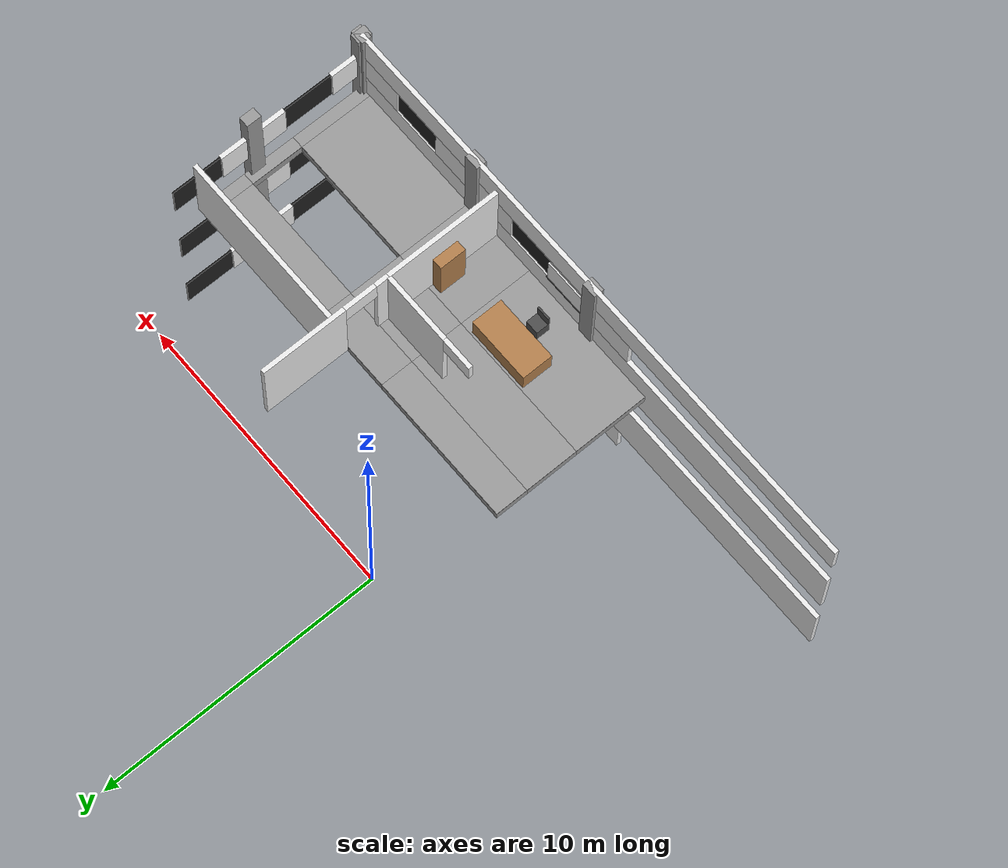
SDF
<sdf version="1.7">
 <world name="default">
  <model name="building_shell">
   <static>1</static>
   <link name="wSsb0_1">
    <pose>6.65 -8 0.5 0 0 0</pose>
    <collision name="c"><geometry><box><size>6.7 0.15 1</size></box></geometry></collision>
    <visual name="v">
     <geometry><box><size>6.7 0.15 1</size></box></geometry>
     <material>
      <script><uri>file://media/materials/scripts/Gazebo.material</uri><name>Gazebo/White</name></script>
     </material>
    </visual>
   </link>
   <link name="wSsb1_0">
    <pose>0 -8 3.25 0 0 0</pose>
    <collision name="c"><geometry><box><size>20 0.15 2.1</size></box></geometry></collision>
    <visual name="v">
     <geometry><box><size>20 0.15 2.1</size></box></geometry>
     <material>
      <script><uri>file://media/materials/scripts/Gazebo.material</uri><name>Gazebo/White</name></script>
     </material>
    </visual>
   </link>
   <link name="wSsb2_0">
    <pose>0 -8 6.55 0 0 0</pose>
    <collision name="c"><geometry><box><size>20 0.15 2.1</size></box></geometry></collision>
    <visual name="v">
     <geometry><box><size>20 0.15 2.1</size></box></geometry>
     <material>
      <script><uri>file://media/materials/scripts/Gazebo.material</uri><name>Gazebo/White</name></script>
     </material>
    </visual>
   </link>
   <link name="wSsb3_0">
    <pose>0 -8 9.35 0 0 0</pose>
    <collision name="c"><geometry><box><size>20 0.15 1.1</size></box></geometry></collision>
    <visual name="v">
     <geometry><box><size>20 0.15 1.1</size></box></geometry>
     <material>
      <script><uri>file://media/materials/scripts/Gazebo.material</uri><name>Gazebo/White</name></script>
     </material>
    </visual>
   </link>
   <link name="wSm0_2">
    <pose>0 -8 1.6 0 0 0</pose>
    <collision name="c"><geometry><box><size>3.3 0.15 1.2</size></box></geometry></collision>
    <visual name="v">
     <geometry><box><size>3.3 0.15 1.2</size></box></geometry>
     <material>
      <script><uri>file://media/materials/scripts/Gazebo.material</uri><name>Gazebo/White</name></script>
     </material>
    </visual>
   </link>
   <link name="wSm0_3">
    <pose>5 -8 1.6 0 0 0</pose>
    <collision name="c"><geometry><box><size>3.3 0.15 1.2</size></box></geometry></collision>
    <visual name="v">
     <geometry><box><size>3.3 0.15 1.2</size></box></geometry>
     <material>
      <script><uri>file://media/materials/scripts/Gazebo.material</uri><name>Gazebo/White</name></script>
     </material>
    </visual>
   </link>
   <link name="wSm0_4">
    <pose>9.175 -8 1.6 0 0 0</pose>
    <collision name="c"><geometry><box><size>1.65 0.15 1.2</size></box></geometry></collision>
    <visual name="v">
     <geometry><box><size>1.65 0.15 1.2</size></box></geometry>
     <material>
      <script><uri>file://media/materials/scripts/Gazebo.material</uri><name>Gazebo/White</name></script>
     </material>
    </visual>
   </link>
   <link name="wSg0_3">
    <pose>7.5 -8 1.6 0 0 0</pose>
    <collision name="c"><geometry><box><size>1.7 0.05 1.2</size></box></geometry></collision>
    <visual name="v">
     <geometry><box><size>1.7 0.05 1.2</size></box></geometry>
     <material>
      <script><uri>file://media/materials/scripts/Gazebo.material</uri><name>Gazebo/FlatBlack</name></script>
     </material>
    </visual>
   </link>
   <link name="wSm1_2">
    <pose>0 -8 4.9 0 0 0</pose>
    <collision name="c"><geometry><box><size>3.3 0.15 1.2</size></box></geometry></collision>
    <visual name="v">
     <geometry><box><size>3.3 0.15 1.2</size></box></geometry>
     <material>
      <script><uri>file://media/materials/scripts/Gazebo.material</uri><name>Gazebo/White</name></script>
     </material>
    </visual>
   </link>
   <link name="wSm1_3">
    <pose>5 -8 4.9 0 0 0</pose>
    <collision name="c"><geometry><box><size>3.3 0.15 1.2</size></box></geometry></collision>
    <visual name="v">
     <geometry><box><size>3.3 0.15 1.2</size></box></geometry>
     <material>
      <script><uri>file://media/materials/scripts/Gazebo.material</uri><name>Gazebo/White</name></script>
     </material>
    </visual>
   </link>
   <link name="wSm1_4">
    <pose>9.175 -8 4.9 0 0 0</pose>
    <collision name="c"><geometry><box><size>1.65 0.15 1.2</size></box></geometry></collision>
    <visual name="v">
     <geometry><box><size>1.65 0.15 1.2</size></box></geometry>
     <material>
      <script><uri>file://media/materials/scripts/Gazebo.material</uri><name>Gazebo/White</name></script>
     </material>
    </visual>
   </link>
   <link name="wSg1_2">
    <pose>2.5 -8 4.9 0 0 0</pose>
    <collision name="c"><geometry><box><size>1.7 0.05 1.2</size></box></geometry></collision>
    <visual name="v">
     <geometry><box><size>1.7 0.05 1.2</size></box></geometry>
     <material>
      <script><uri>file://media/materials/scripts/Gazebo.material</uri><name>Gazebo/FlatBlack</name></script>
     </material>
    </visual>
   </link>
   <link name="wSg1_3">
    <pose>7.5 -8 4.9 0 0 0</pose>
    <collision name="c"><geometry><box><size>1.7 0.05 1.2</size></box></geometry></collision>
    <visual name="v">
     <geometry><box><size>1.7 0.05 1.2</size></box></geometry>
     <material>
      <script><uri>file://media/materials/scripts/Gazebo.material</uri><name>Gazebo/FlatBlack</name></script>
     </material>
    </visual>
   </link>
   <link name="wSm2_2">
    <pose>0 -8 8.2 0 0 0</pose>
    <collision name="c"><geometry><box><size>3.3 0.15 1.2</size></box></geometry></collision>
    <visual name="v">
     <geometry><box><size>3.3 0.15 1.2</size></box></geometry>
     <material>
      <script><uri>file://media/materials/scripts/Gazebo.material</uri><name>Gazebo/White</name></script>
     </material>
    </visual>
   </link>
   <link name="wSm2_3">
    <pose>5 -8 8.2 0 0 0</pose>
    <collision name="c"><geometry><box><size>3.3 0.15 1.2</size></box></geometry></collision>
    <visual name="v">
     <geometry><box><size>3.3 0.15 1.2</size></box></geometry>
     <material>
      <script><uri>file://media/materials/scripts/Gazebo.material</uri><name>Gazebo/White</name></script>
     </material>
    </visual>
   </link>
   <link name="wSm2_4">
    <pose>9.175 -8 8.2 0 0 0</pose>
    <collision name="c"><geometry><box><size>1.65 0.15 1.2</size></box></geometry></collision>
    <visual name="v">
     <geometry><box><size>1.65 0.15 1.2</size></box></geometry>
     <material>
      <script><uri>file://media/materials/scripts/Gazebo.material</uri><name>Gazebo/White</name></script>
     </material>
    </visual>
   </link>
   <link name="wSg2_2">
    <pose>2.5 -8 8.2 0 0 0</pose>
    <collision name="c"><geometry><box><size>1.7 0.05 1.2</size></box></geometry></collision>
    <visual name="v">
     <geometry><box><size>1.7 0.05 1.2</size></box></geometry>
     <material>
      <script><uri>file://media/materials/scripts/Gazebo.material</uri><name>Gazebo/FlatBlack</name></script>
     </material>
    </visual>
   </link>
   <link name="wSg2_3">
    <pose>7.5 -8 8.2 0 0 0</pose>
    <collision name="c"><geometry><box><size>1.7 0.05 1.2</size></box></geometry></collision>
    <visual name="v">
     <geometry><box><size>1.7 0.05 1.2</size></box></geometry>
     <material>
      <script><uri>file://media/materials/scripts/Gazebo.material</uri><name>Gazebo/FlatBlack</name></script>
     </material>
    </visual>
   </link>
   <link name="wSpil0">
    <pose>0 -8 4.95 0 0 0</pose>
    <collision name="c"><geometry><box><size>0.5 0.35 9.9</size></box></geometry></collision>
    <visual name="v">
     <geometry><box><size>0.5 0.35 9.9</size></box></geometry>
     <material>
      <script><uri>file://media/materials/scripts/Gazebo.material</uri><name>Gazebo/Grey</name></script>
     </material>
    </visual>
   </link>
   <link name="wSpil5">
    <pose>5 -8 4.95 0 0 0</pose>
    <collision name="c"><geometry><box><size>0.5 0.35 9.9</size></box></geometry></collision>
    <visual name="v">
     <geometry><box><size>0.5 0.35 9.9</size></box></geometry>
     <material>
      <script><uri>file://media/materials/scripts/Gazebo.material</uri><name>Gazebo/Grey</name></script>
     </material>
    </visual>
   </link>
   <link name="wSpil10">
    <pose>10 -8 4.95 0 0 0</pose>
    <collision name="c"><geometry><box><size>0.5 0.35 9.9</size></box></geometry></collision>
    <visual name="v">
     <geometry><box><size>0.5 0.35 9.9</size></box></geometry>
     <material>
      <script><uri>file://media/materials/scripts/Gazebo.material</uri><name>Gazebo/Grey</name></script>
     </material>
    </visual>
   </link>
   <link name="wEm0_0">
    <pose>10 -7.425 1.6 0 0 0</pose>
    <collision name="c"><geometry><box><size>0.15 1.15 1.2</size></box></geometry></collision>
    <visual name="v">
     <geometry><box><size>0.15 1.15 1.2</size></box></geometry>
     <material>
      <script><uri>file://media/materials/scripts/Gazebo.material</uri><name>Gazebo/White</name></script>
     </material>
    </visual>
   </link>
   <link name="wEm0_1">
    <pose>10 -4 1.6 0 0 0</pose>
    <collision name="c"><geometry><box><size>0.15 2.3 1.2</size></box></geometry></collision>
    <visual name="v">
     <geometry><box><size>0.15 2.3 1.2</size></box></geometry>
     <material>
      <script><uri>file://media/materials/scripts/Gazebo.material</uri><name>Gazebo/White</name></script>
     </material>
    </visual>
   </link>
   <link name="wEg0_0">
    <pose>10 -6 1.6 0 0 0</pose>
    <collision name="c"><geometry><box><size>0.05 1.7 1.2</size></box></geometry></collision>
    <visual name="v">
     <geometry><box><size>0.05 1.7 1.2</size></box></geometry>
     <material>
      <script><uri>file://media/materials/scripts/Gazebo.material</uri><name>Gazebo/FlatBlack</name></script>
     </material>
    </visual>
   </link>
   <link name="wEg0_1">
    <pose>10 -2 1.6 0 0 0</pose>
    <collision name="c"><geometry><box><size>0.05 1.7 1.2</size></box></geometry></collision>
    <visual name="v">
     <geometry><box><size>0.05 1.7 1.2</size></box></geometry>
     <material>
      <script><uri>file://media/materials/scripts/Gazebo.material</uri><name>Gazebo/FlatBlack</name></script>
     </material>
    </visual>
   </link>
   <link name="wEm1_0">
    <pose>10 -7.425 4.9 0 0 0</pose>
    <collision name="c"><geometry><box><size>0.15 1.15 1.2</size></box></geometry></collision>
    <visual name="v">
     <geometry><box><size>0.15 1.15 1.2</size></box></geometry>
     <material>
      <script><uri>file://media/materials/scripts/Gazebo.material</uri><name>Gazebo/White</name></script>
     </material>
    </visual>
   </link>
   <link name="wEm1_1">
    <pose>10 -4 4.9 0 0 0</pose>
    <collision name="c"><geometry><box><size>0.15 2.3 1.2</size></box></geometry></collision>
    <visual name="v">
     <geometry><box><size>0.15 2.3 1.2</size></box></geometry>
     <material>
      <script><uri>file://media/materials/scripts/Gazebo.material</uri><name>Gazebo/White</name></script>
     </material>
    </visual>
   </link>
   <link name="wEg1_0">
    <pose>10 -6 4.9 0 0 0</pose>
    <collision name="c"><geometry><box><size>0.05 1.7 1.2</size></box></geometry></collision>
    <visual name="v">
     <geometry><box><size>0.05 1.7 1.2</size></box></geometry>
     <material>
      <script><uri>file://media/materials/scripts/Gazebo.material</uri><name>Gazebo/FlatBlack</name></script>
     </material>
    </visual>
   </link>
   <link name="wEg1_1">
    <pose>10 -2 4.9 0 0 0</pose>
    <collision name="c"><geometry><box><size>0.05 1.7 1.2</size></box></geometry></collision>
    <visual name="v">
     <geometry><box><size>0.05 1.7 1.2</size></box></geometry>
     <material>
      <script><uri>file://media/materials/scripts/Gazebo.material</uri><name>Gazebo/FlatBlack</name></script>
     </material>
    </visual>
   </link>
   <link name="wEm2_0">
    <pose>10 -7.425 8.2 0 0 0</pose>
    <collision name="c"><geometry><box><size>0.15 1.15 1.2</size></box></geometry></collision>
    <visual name="v">
     <geometry><box><size>0.15 1.15 1.2</size></box></geometry>
     <material>
      <script><uri>file://media/materials/scripts/Gazebo.material</uri><name>Gazebo/White</name></script>
     </material>
    </visual>
   </link>
   <link name="wEm2_1">
    <pose>10 -4 8.2 0 0 0</pose>
    <collision name="c"><geometry><box><size>0.15 2.3 1.2</size></box></geometry></collision>
    <visual name="v">
     <geometry><box><size>0.15 2.3 1.2</size></box></geometry>
     <material>
      <script><uri>file://media/materials/scripts/Gazebo.material</uri><name>Gazebo/White</name></script>
     </material>
    </visual>
   </link>
   <link name="wEg2_0">
    <pose>10 -6 8.2 0 0 0</pose>
    <collision name="c"><geometry><box><size>0.05 1.7 1.2</size></box></geometry></collision>
    <visual name="v">
     <geometry><box><size>0.05 1.7 1.2</size></box></geometry>
     <material>
      <script><uri>file://media/materials/scripts/Gazebo.material</uri><name>Gazebo/FlatBlack</name></script>
     </material>
    </visual>
   </link>
   <link name="wEg2_1">
    <pose>10 -2 8.2 0 0 0</pose>
    <collision name="c"><geometry><box><size>0.05 1.7 1.2</size></box></geometry></collision>
    <visual name="v">
     <geometry><box><size>0.05 1.7 1.2</size></box></geometry>
     <material>
      <script><uri>file://media/materials/scripts/Gazebo.material</uri><name>Gazebo/FlatBlack</name></script>
     </material>
    </visual>
   </link>
   <link name="wEpil-8">
    <pose>10 -8 4.95 0 0 0</pose>
    <collision name="c"><geometry><box><size>0.35 0.5 9.9</size></box></geometry></collision>
    <visual name="v">
     <geometry><box><size>0.35 0.5 9.9</size></box></geometry>
     <material>
      <script><uri>file://media/materials/scripts/Gazebo.material</uri><name>Gazebo/Grey</name></script>
     </material>
    </visual>
   </link>
   <link name="wEpil-4">
    <pose>10 -4 4.95 0 0 0</pose>
    <collision name="c"><geometry><box><size>0.35 0.5 9.9</size></box></geometry></collision>
    <visual name="v">
     <geometry><box><size>0.35 0.5 9.9</size></box></geometry>
     <material>
      <script><uri>file://media/materials/scripts/Gazebo.material</uri><name>Gazebo/Grey</name></script>
     </material>
    </visual>
   </link>
   <link name="canopy">
    <pose>2.5 -8.9 2.6 0 0 0</pose>
    <collision name="c"><geometry><box><size>3 1.8 0.15</size></box></geometry></collision>
    <visual name="v">
     <geometry><box><size>3 1.8 0.15</size></box></geometry>
     <material>
      <script><uri>file://media/materials/scripts/Gazebo.material</uri><name>Gazebo/DarkGrey</name></script>
     </material>
    </visual>
   </link>
   <link name="canopyL">
    <pose>1.1 -9.7 1.3 0 0 0</pose>
    <collision name="c"><geometry><box><size>0.15 0.15 2.6</size></box></geometry></collision>
    <visual name="v">
     <geometry><box><size>0.15 0.15 2.6</size></box></geometry>
     <material>
      <script><uri>file://media/materials/scripts/Gazebo.material</uri><name>Gazebo/DarkGrey</name></script>
     </material>
    </visual>
   </link>
   <link name="canopyR">
    <pose>3.9 -9.7 1.3 0 0 0</pose>
    <collision name="c"><geometry><box><size>0.15 0.15 2.6</size></box></geometry></collision>
    <visual name="v">
     <geometry><box><size>0.15 0.15 2.6</size></box></geometry>
     <material>
      <script><uri>file://media/materials/scripts/Gazebo.material</uri><name>Gazebo/DarkGrey</name></script>
     </material>
    </visual>
   </link>
  </model>
  <model name="building_L3">
   <static>1</static>
   <link name="floor2_5">
    <pose>0 -6.7 6.45 0 0 0</pose>
    <collision name="c"><geometry><box><size>5 2.6 0.3</size></box></geometry></collision>
    <visual name="v">
     <geometry><box><size>5 2.6 0.3</size></box></geometry>
     <material>
      <script><uri>file://media/materials/scripts/Gazebo.material</uri><name>Gazebo/Grey</name></script>
     </material>
    </visual>
   </link>
   <link name="floor2c_5">
    <pose>0 -6.7 6.61 0 0 0</pose>
    <collision name="c"><geometry><box><size>5 2.6 0.02</size></box></geometry></collision>
    <visual name="v">
     <geometry><box><size>5 2.6 0.02</size></box></geometry>
     <material>
      <script><uri>file://media/materials/scripts/Gazebo.material</uri><name>Gazebo/Grey</name></script>
     </material>
    </visual>
   </link>
   <link name="floor2_6">
    <pose>0 -4.5 6.45 0 0 0</pose>
    <collision name="c"><geometry><box><size>5 1.8 0.3</size></box></geometry></collision>
    <visual name="v">
     <geometry><box><size>5 1.8 0.3</size></box></geometry>
     <material>
      <script><uri>file://media/materials/scripts/Gazebo.material</uri><name>Gazebo/Grey</name></script>
     </material>
    </visual>
   </link>
   <link name="floor2c_6">
    <pose>0 -4.5 6.61 0 0 0</pose>
    <collision name="c"><geometry><box><size>5 1.8 0.02</size></box></geometry></collision>
    <visual name="v">
     <geometry><box><size>5 1.8 0.02</size></box></geometry>
     <material>
      <script><uri>file://media/materials/scripts/Gazebo.material</uri><name>Gazebo/Grey</name></script>
     </material>
    </visual>
   </link>
   <link name="floor2_7">
    <pose>0 -3.05 6.45 0 0 0</pose>
    <collision name="c"><geometry><box><size>5 1.1 0.3</size></box></geometry></collision>
    <visual name="v">
     <geometry><box><size>5 1.1 0.3</size></box></geometry>
     <material>
      <script><uri>file://media/materials/scripts/Gazebo.material</uri><name>Gazebo/Grey</name></script>
     </material>
    </visual>
   </link>
   <link name="floor2c_7">
    <pose>0 -3.05 6.61 0 0 0</pose>
    <collision name="c"><geometry><box><size>5 1.1 0.02</size></box></geometry></collision>
    <visual name="v">
     <geometry><box><size>5 1.1 0.02</size></box></geometry>
     <material>
      <script><uri>file://media/materials/scripts/Gazebo.material</uri><name>Gazebo/Grey</name></script>
     </material>
    </visual>
   </link>
   <link name="floor2_9">
    <pose>3.85 -6.7 6.45 0 0 0</pose>
    <collision name="c"><geometry><box><size>2.7 2.6 0.3</size></box></geometry></collision>
    <visual name="v">
     <geometry><box><size>2.7 2.6 0.3</size></box></geometry>
     <material>
      <script><uri>file://media/materials/scripts/Gazebo.material</uri><name>Gazebo/Grey</name></script>
     </material>
    </visual>
   </link>
   <link name="floor2c_9">
    <pose>3.85 -6.7 6.61 0 0 0</pose>
    <collision name="c"><geometry><box><size>2.7 2.6 0.02</size></box></geometry></collision>
    <visual name="v">
     <geometry><box><size>2.7 2.6 0.02</size></box></geometry>
     <material>
      <script><uri>file://media/materials/scripts/Gazebo.material</uri><name>Gazebo/Grey</name></script>
     </material>
    </visual>
   </link>
   <link name="floor2_10">
    <pose>3.85 -4.5 6.45 0 0 0</pose>
    <collision name="c"><geometry><box><size>2.7 1.8 0.3</size></box></geometry></collision>
    <visual name="v">
     <geometry><box><size>2.7 1.8 0.3</size></box></geometry>
     <material>
      <script><uri>file://media/materials/scripts/Gazebo.material</uri><name>Gazebo/Grey</name></script>
     </material>
    </visual>
   </link>
   <link name="floor2c_10">
    <pose>3.85 -4.5 6.61 0 0 0</pose>
    <collision name="c"><geometry><box><size>2.7 1.8 0.02</size></box></geometry></collision>
    <visual name="v">
     <geometry><box><size>2.7 1.8 0.02</size></box></geometry>
     <material>
      <script><uri>file://media/materials/scripts/Gazebo.material</uri><name>Gazebo/Grey</name></script>
     </material>
    </visual>
   </link>
   <link name="floor2_11">
    <pose>3.85 -3.05 6.45 0 0 0</pose>
    <collision name="c"><geometry><box><size>2.7 1.1 0.3</size></box></geometry></collision>
    <visual name="v">
     <geometry><box><size>2.7 1.1 0.3</size></box></geometry>
     <material>
      <script><uri>file://media/materials/scripts/Gazebo.material</uri><name>Gazebo/Grey</name></script>
     </material>
    </visual>
   </link>
   <link name="floor2c_11">
    <pose>3.85 -3.05 6.61 0 0 0</pose>
    <collision name="c"><geometry><box><size>2.7 1.1 0.02</size></box></geometry></collision>
    <visual name="v">
     <geometry><box><size>2.7 1.1 0.02</size></box></geometry>
     <material>
      <script><uri>file://media/materials/scripts/Gazebo.material</uri><name>Gazebo/Grey</name></script>
     </material>
    </visual>
   </link>
   <link name="floor2_14">
    <pose>7.4 -6.7 6.45 0 0 0</pose>
    <collision name="c"><geometry><box><size>4.4 2.6 0.3</size></box></geometry></collision>
    <visual name="v">
     <geometry><box><size>4.4 2.6 0.3</size></box></geometry>
     <material>
      <script><uri>file://media/materials/scripts/Gazebo.material</uri><name>Gazebo/Grey</name></script>
     </material>
    </visual>
   </link>
   <link name="floor2c_14">
    <pose>7.4 -6.7 6.61 0 0 0</pose>
    <collision name="c"><geometry><box><size>4.4 2.6 0.02</size></box></geometry></collision>
    <visual name="v">
     <geometry><box><size>4.4 2.6 0.02</size></box></geometry>
     <material>
      <script><uri>file://media/materials/scripts/Gazebo.material</uri><name>Gazebo/Grey</name></script>
     </material>
    </visual>
   </link>
   <link name="floor2_15">
    <pose>7.4 -3.05 6.45 0 0 0</pose>
    <collision name="c"><geometry><box><size>4.4 1.1 0.3</size></box></geometry></collision>
    <visual name="v">
     <geometry><box><size>4.4 1.1 0.3</size></box></geometry>
     <material>
      <script><uri>file://media/materials/scripts/Gazebo.material</uri><name>Gazebo/Grey</name></script>
     </material>
    </visual>
   </link>
   <link name="floor2c_15">
    <pose>7.4 -3.05 6.61 0 0 0</pose>
    <collision name="c"><geometry><box><size>4.4 1.1 0.02</size></box></geometry></collision>
    <visual name="v">
     <geometry><box><size>4.4 1.1 0.02</size></box></geometry>
     <material>
      <script><uri>file://media/materials/scripts/Gazebo.material</uri><name>Gazebo/Grey</name></script>
     </material>
    </visual>
   </link>
   <link name="floor2_18">
    <pose>9.8 -6.7 6.45 0 0 0</pose>
    <collision name="c"><geometry><box><size>0.4 2.6 0.3</size></box></geometry></collision>
    <visual name="v">
     <geometry><box><size>0.4 2.6 0.3</size></box></geometry>
     <material>
      <script><uri>file://media/materials/scripts/Gazebo.material</uri><name>Gazebo/Grey</name></script>
     </material>
    </visual>
   </link>
   <link name="floor2c_18">
    <pose>9.8 -6.7 6.61 0 0 0</pose>
    <collision name="c"><geometry><box><size>0.4 2.6 0.02</size></box></geometry></collision>
    <visual name="v">
     <geometry><box><size>0.4 2.6 0.02</size></box></geometry>
     <material>
      <script><uri>file://media/materials/scripts/Gazebo.material</uri><name>Gazebo/Grey</name></script>
     </material>
    </visual>
   </link>
   <link name="floor2_19">
    <pose>9.8 -4.5 6.45 0 0 0</pose>
    <collision name="c"><geometry><box><size>0.4 1.8 0.3</size></box></geometry></collision>
    <visual name="v">
     <geometry><box><size>0.4 1.8 0.3</size></box></geometry>
     <material>
      <script><uri>file://media/materials/scripts/Gazebo.material</uri><name>Gazebo/Grey</name></script>
     </material>
    </visual>
   </link>
   <link name="floor2c_19">
    <pose>9.8 -4.5 6.61 0 0 0</pose>
    <collision name="c"><geometry><box><size>0.4 1.8 0.02</size></box></geometry></collision>
    <visual name="v">
     <geometry><box><size>0.4 1.8 0.02</size></box></geometry>
     <material>
      <script><uri>file://media/materials/scripts/Gazebo.material</uri><name>Gazebo/Grey</name></script>
     </material>
    </visual>
   </link>
   <link name="floor2_20">
    <pose>9.8 -3.05 6.45 0 0 0</pose>
    <collision name="c"><geometry><box><size>0.4 1.1 0.3</size></box></geometry></collision>
    <visual name="v">
     <geometry><box><size>0.4 1.1 0.3</size></box></geometry>
     <material>
      <script><uri>file://media/materials/scripts/Gazebo.material</uri><name>Gazebo/Grey</name></script>
     </material>
    </visual>
   </link>
   <link name="floor2c_20">
    <pose>9.8 -3.05 6.61 0 0 0</pose>
    <collision name="c"><geometry><box><size>0.4 1.1 0.02</size></box></geometry></collision>
    <visual name="v">
     <geometry><box><size>0.4 1.1 0.02</size></box></geometry>
     <material>
      <script><uri>file://media/materials/scripts/Gazebo.material</uri><name>Gazebo/Grey</name></script>
     </material>
    </visual>
   </link>
   <link name="w2_1_2">
    <pose>2.775 -4 8.05 0 0 0</pose>
    <collision name="c"><geometry><box><size>2.45 0.15 2.9</size></box></geometry></collision>
    <visual name="v">
     <geometry><box><size>2.45 0.15 2.9</size></box></geometry>
     <material>
      <script><uri>file://media/materials/scripts/Gazebo.material</uri><name>Gazebo/White</name></script>
     </material>
    </visual>
   </link>
   <link name="w2_1_L1">
    <pose>1 -4 9.15 0 0 0</pose>
    <collision name="c"><geometry><box><size>1.1 0.15 0.7</size></box></geometry></collision>
    <visual name="v">
     <geometry><box><size>1.1 0.15 0.7</size></box></geometry>
     <material>
      <script><uri>file://media/materials/scripts/Gazebo.material</uri><name>Gazebo/White</name></script>
     </material>
    </visual>
   </link>
   <link name="w2_3_0">
    <pose>4 -3.775 8.05 0 0 0</pose>
    <collision name="c"><geometry><box><size>0.15 0.45 2.9</size></box></geometry></collision>
    <visual name="v">
     <geometry><box><size>0.15 0.45 2.9</size></box></geometry>
     <material>
      <script><uri>file://media/materials/scripts/Gazebo.material</uri><name>Gazebo/White</name></script>
     </material>
    </visual>
   </link>
   <link name="w2_3_1">
    <pose>4 -1 8.05 0 0 0</pose>
    <collision name="c"><geometry><box><size>0.15 2.9 2.9</size></box></geometry></collision>
    <visual name="v">
     <geometry><box><size>0.15 2.9 2.9</size></box></geometry>
     <material>
      <script><uri>file://media/materials/scripts/Gazebo.material</uri><name>Gazebo/White</name></script>
     </material>
    </visual>
   </link>
   <link name="w2_3_L1">
    <pose>4 -3 9.15 0 0 0</pose>
    <collision name="c"><geometry><box><size>0.15 1.1 0.7</size></box></geometry></collision>
    <visual name="v">
     <geometry><box><size>0.15 1.1 0.7</size></box></geometry>
     <material>
      <script><uri>file://media/materials/scripts/Gazebo.material</uri><name>Gazebo/White</name></script>
     </material>
    </visual>
   </link>
   <link name="w2_5_0">
    <pose>4 -6 8.05 0 0 0</pose>
    <collision name="c"><geometry><box><size>0.15 4 2.9</size></box></geometry></collision>
    <visual name="v">
     <geometry><box><size>0.15 4 2.9</size></box></geometry>
     <material>
      <script><uri>file://media/materials/scripts/Gazebo.material</uri><name>Gazebo/White</name></script>
     </material>
    </visual>
   </link>
   <link name="w2_11_0">
    <pose>7 -2 8.05 0 0 0</pose>
    <collision name="c"><geometry><box><size>6 0.15 2.9</size></box></geometry></collision>
    <visual name="v">
     <geometry><box><size>6 0.15 2.9</size></box></geometry>
     <material>
      <script><uri>file://media/materials/scripts/Gazebo.material</uri><name>Gazebo/White</name></script>
     </material>
    </visual>
   </link>
   <link name="f2_S2mtt">
    <pose>1 -6 6.98 0 0 0</pose>
    <collision name="c"><geometry><box><size>2.2 1.05 0.76</size></box></geometry></collision>
    <visual name="v">
     <geometry><box><size>2.2 1.05 0.76</size></box></geometry>
     <material>
      <script><uri>file://media/materials/scripts/Gazebo.material</uri><name>Gazebo/Wood</name></script>
     </material>
    </visual>
   </link>
   <link name="f2_S2c2s">
    <pose>1 -6.95 6.84 0 0 0</pose>
    <collision name="c"><geometry><box><size>0.46 0.46 0.48</size></box></geometry></collision>
    <visual name="v">
     <geometry><box><size>0.46 0.46 0.48</size></box></geometry>
     <material>
      <script><uri>file://media/materials/scripts/Gazebo.material</uri><name>Gazebo/DarkGrey</name></script>
     </material>
    </visual>
   </link>
   <link name="f2_S2c2b">
    <pose>1 -7.15 7.2 0 0 0</pose>
    <collision name="c"><geometry><box><size>0.46 0.06 0.55</size></box></geometry></collision>
    <visual name="v">
     <geometry><box><size>0.46 0.06 0.55</size></box></geometry>
     <material>
      <script><uri>file://media/materials/scripts/Gazebo.material</uri><name>Gazebo/DarkGrey</name></script>
     </material>
    </visual>
   </link>
   <link name="f2_S2bsf">
    <pose>3.75 -6 7.5 0 0 0</pose>
    <collision name="c"><geometry><box><size>0.35 0.9 1.8</size></box></geometry></collision>
    <visual name="v">
     <geometry><box><size>0.35 0.9 1.8</size></box></geometry>
     <material>
      <script><uri>file://media/materials/scripts/Gazebo.material</uri><name>Gazebo/Wood</name></script>
     </material>
    </visual>
   </link>
   <link name="f2_S2bsb0">
    <pose>3.75 -6 7.05 0 0 0</pose>
    <collision name="c"><geometry><box><size>0.28 0.8 0.32</size></box></geometry></collision>
    <visual name="v">
     <geometry><box><size>0.28 0.8 0.32</size></box></geometry>
     <material>
      <script><uri>file://media/materials/scripts/Gazebo.material</uri><name>Gazebo/Grey</name></script>
     </material>
    </visual>
   </link>
   <link name="f2_S2bsb1">
    <pose>3.75 -6 7.55 0 0 0</pose>
    <collision name="c"><geometry><box><size>0.28 0.8 0.32</size></box></geometry></collision>
    <visual name="v">
     <geometry><box><size>0.28 0.8 0.32</size></box></geometry>
     <material>
      <script><uri>file://media/materials/scripts/Gazebo.material</uri><name>Gazebo/Grey</name></script>
     </material>
    </visual>
   </link>
   <link name="f2_S2bsb2">
    <pose>3.75 -6 8.05 0 0 0</pose>
    <collision name="c"><geometry><box><size>0.28 0.8 0.32</size></box></geometry></collision>
    <visual name="v">
     <geometry><box><size>0.28 0.8 0.32</size></box></geometry>
     <material>
      <script><uri>file://media/materials/scripts/Gazebo.material</uri><name>Gazebo/Grey</name></script>
     </material>
    </visual>
   </link>
   <link name="f2_S2wbw">
    <pose>1 -7.895 8.2 0 0 0</pose>
    <collision name="c"><geometry><box><size>1.4 0.05 1</size></box></geometry></collision>
    <visual name="v">
     <geometry><box><size>1.4 0.05 1</size></box></geometry>
     <material>
      <script><uri>file://media/materials/scripts/Gazebo.material</uri><name>Gazebo/White</name></script>
     </material>
    </visual>
   </link>
   <link name="f2_S2wbf">
    <pose>1 -7.895 7.65 0 0 0</pose>
    <collision name="c"><geometry><box><size>1.5 0.06 0.06</size></box></geometry></collision>
    <visual name="v">
     <geometry><box><size>1.5 0.06 0.06</size></box></geometry>
     <material>
      <script><uri>file://media/materials/scripts/Gazebo.material</uri><name>Gazebo/DarkGrey</name></script>
     </material>
    </visual>
   </link>
  </model>
 </world>
</sdf>
